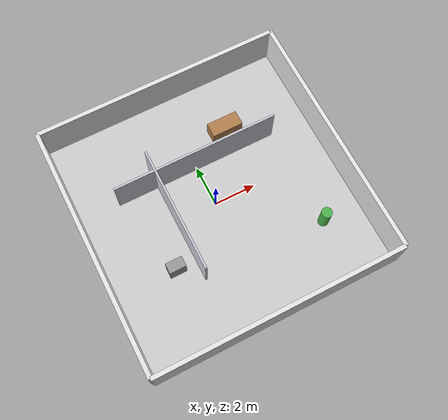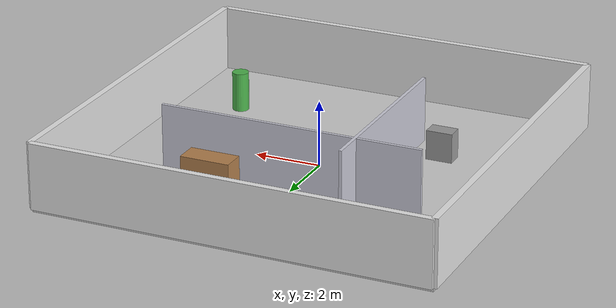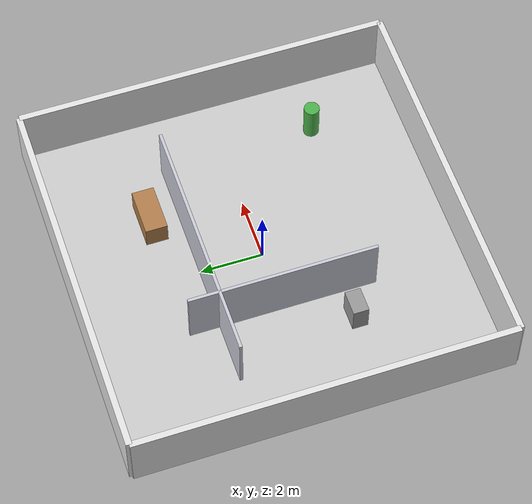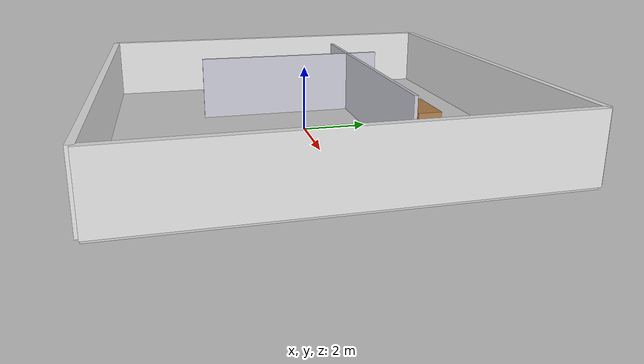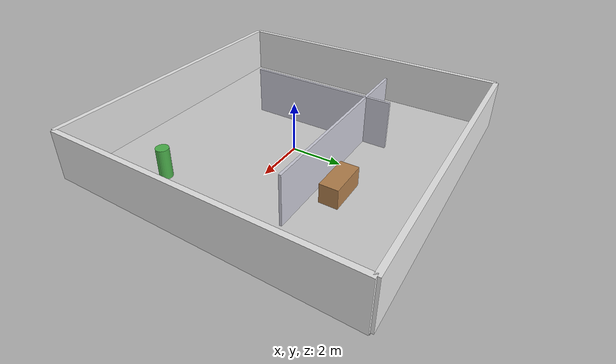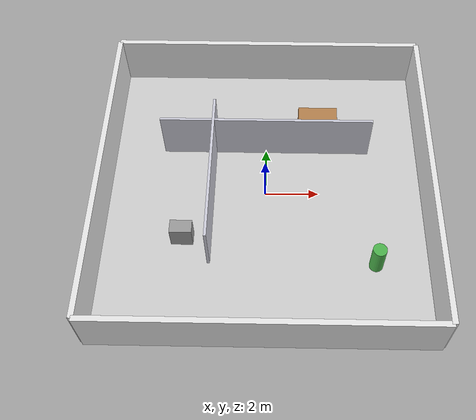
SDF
<?xml version="1.0" ?>
<sdf version="1.6">
  <world name="office_floor">
    <!-- Lighting -->
    <include>
      <uri>model://sun</uri>
    </include>

    <!-- Floor slab -->
    <model name="office_floor_slab">
      <static>true</static>
      <pose>0 0 -0.05 0 0 0</pose>
      <link name="floor_link">
        <collision name="collision">
          <geometry>
            <box>
              <size>12 12 0.1</size>
            </box>
          </geometry>
        </collision>
        <visual name="visual">
          <geometry>
            <box>
              <size>12 12 0.1</size>
            </box>
          </geometry>
          <material>
            <ambient>0.7 0.7 0.7 1</ambient>
            <diffuse>0.8 0.8 0.8 1</diffuse>
          </material>
        </visual>
      </link>
    </model>

    <!-- Perimeter walls -->
    <model name="north_wall">
      <static>true</static>
      <pose>0 6 1.0 0 0 0</pose>
      <link name="link">
        <collision name="collision">
          <geometry>
            <box>
              <size>12 0.2 2</size>
            </box>
          </geometry>
        </collision>
        <visual name="visual">
          <geometry>
            <box>
              <size>12 0.2 2</size>
            </box>
          </geometry>
          <material>
            <ambient>0.9 0.9 0.9 1</ambient>
            <diffuse>0.9 0.9 0.9 1</diffuse>
          </material>
        </visual>
      </link>
    </model>

    <model name="south_wall">
      <static>true</static>
      <pose>0 -6 1.0 0 0 0</pose>
      <link name="link">
        <collision name="collision">
          <geometry>
            <box>
              <size>12 0.2 2</size>
            </box>
          </geometry>
        </collision>
        <visual name="visual">
          <geometry>
            <box>
              <size>12 0.2 2</size>
            </box>
          </geometry>
          <material>
            <ambient>0.9 0.9 0.9 1</ambient>
            <diffuse>0.9 0.9 0.9 1</diffuse>
          </material>
        </visual>
      </link>
    </model>

    <model name="east_wall">
      <static>true</static>
      <pose>6 0 1.0 0 0 0</pose>
      <link name="link">
        <collision name="collision">
          <geometry>
            <box>
              <size>0.2 12 2</size>
            </box>
          </geometry>
        </collision>
        <visual name="visual">
          <geometry>
            <box>
              <size>0.2 12 2</size>
            </box>
          </geometry>
          <material>
            <ambient>0.9 0.9 0.9 1</ambient>
            <diffuse>0.9 0.9 0.9 1</diffuse>
          </material>
        </visual>
      </link>
    </model>

    <model name="west_wall">
      <static>true</static>
      <pose>-6 0 1.0 0 0 0</pose>
      <link name="link">
        <collision name="collision">
          <geometry>
            <box>
              <size>0.2 12 2</size>
            </box>
          </geometry>
        </collision>
        <visual name="visual">
          <geometry>
            <box>
              <size>0.2 12 2</size>
            </box>
          </geometry>
          <material>
            <ambient>0.9 0.9 0.9 1</ambient>
            <diffuse>0.9 0.9 0.9 1</diffuse>
          </material>
        </visual>
      </link>
    </model>

    <!-- Internal partitions -->
    <model name="inner_wall_1">
      <static>true</static>
      <pose>0 2 1.0 0 0 0</pose>
      <link name="link">
        <collision name="collision">
          <geometry>
            <box>
              <size>8 0.1 2</size>
            </box>
          </geometry>
        </collision>
        <visual name="visual">
          <geometry>
            <box>
              <size>8 0.1 2</size>
            </box>
          </geometry>
          <material>
            <ambient>0.8 0.8 0.85 1</ambient>
            <diffuse>0.8 0.8 0.85 1</diffuse>
          </material>
        </visual>
      </link>
    </model>

    <model name="inner_wall_2">
      <static>true</static>
      <pose>-2 0 1.0 0 0 1.5708</pose>
      <link name="link">
        <collision name="collision">
          <geometry>
            <box>
              <size>6 0.1 2</size>
            </box>
          </geometry>
        </collision>
        <visual name="visual">
          <geometry>
            <box>
              <size>6 0.1 2</size>
            </box>
          </geometry>
          <material>
            <ambient>0.8 0.8 0.85 1</ambient>
            <diffuse>0.8 0.8 0.85 1</diffuse>
          </material>
        </visual>
      </link>
    </model>

    <!-- Furniture -->
    <model name="main_desk">
      <static>true</static>
      <pose>2 3 0.75 0 0 0</pose>
      <link name="link">
        <collision name="collision">
          <geometry>
            <box>
              <size>1.5 0.7 0.75</size>
            </box>
          </geometry>
        </collision>
        <visual name="visual">
          <geometry>
            <box>
              <size>1.5 0.7 0.75</size>
            </box>
          </geometry>
          <material>
            <ambient>0.6 0.4 0.2 1</ambient>
            <diffuse>0.7 0.5 0.3 1</diffuse>
          </material>
        </visual>
      </link>
    </model>

    <model name="side_table">
      <static>true</static>
      <pose>-3 -2 0.45 0 0 0</pose>
      <link name="link">
        <collision name="collision">
          <geometry>
            <box>
              <size>0.8 0.5 0.9</size>
            </box>
          </geometry>
        </collision>
        <visual name="visual">
          <geometry>
            <box>
              <size>0.8 0.5 0.9</size>
            </box>
          </geometry>
          <material>
            <ambient>0.5 0.5 0.5 1</ambient>
            <diffuse>0.6 0.6 0.6 1</diffuse>
          </material>
        </visual>
      </link>
    </model>

    <model name="plant">
      <static>true</static>
      <pose>4 -3 0.6 0 0 0</pose>
      <link name="link">
        <collision name="collision">
          <geometry>
            <cylinder>
              <radius>0.25</radius>
              <length>1.2</length>
            </cylinder>
          </geometry>
        </collision>
        <visual name="visual">
          <geometry>
            <cylinder>
              <radius>0.25</radius>
              <length>1.2</length>
            </cylinder>
          </geometry>
          <material>
            <ambient>0.2 0.5 0.2 1</ambient>
            <diffuse>0.3 0.7 0.3 1</diffuse>
          </material>
        </visual>
      </link>
    </model>
  </world>
</sdf>
